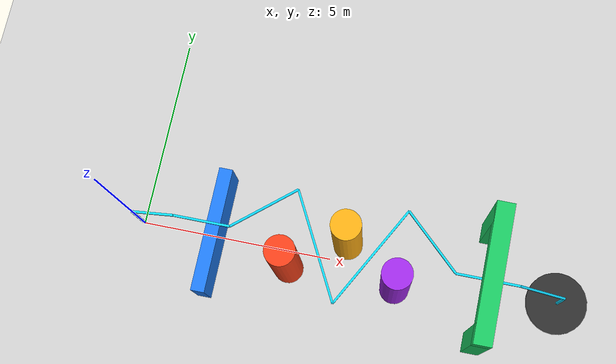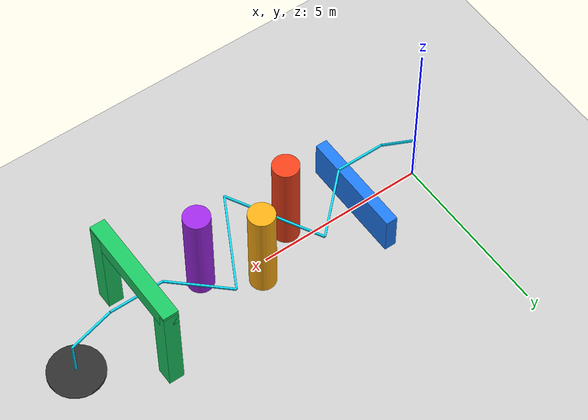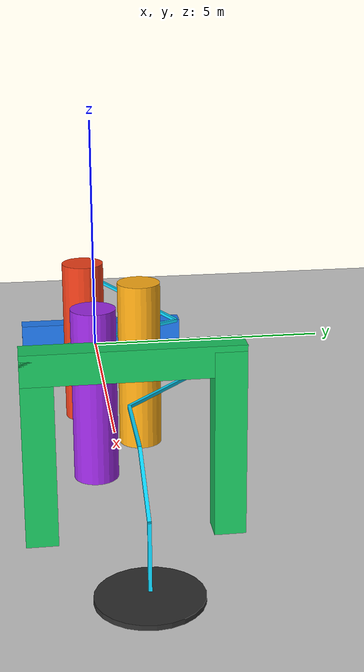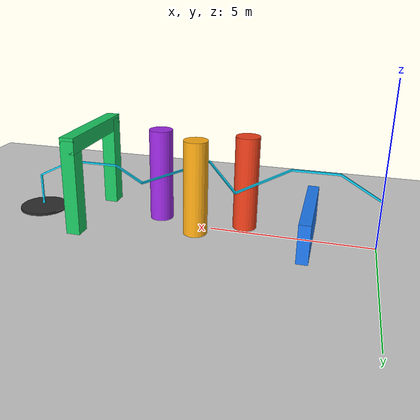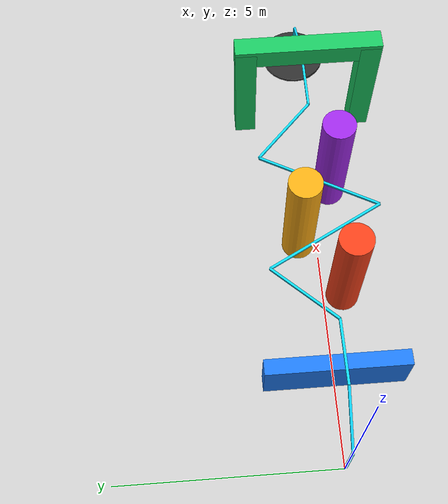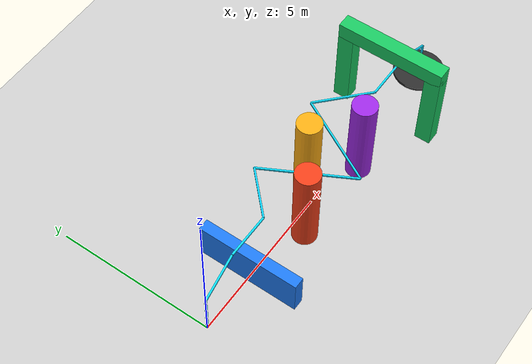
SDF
<?xml version="1.0"?>
<sdf version="1.6">
  <world name="obstacle_course">
    <include><uri>model://sun</uri></include>
    <include><uri>model://ground_plane</uri></include>
    <physics name="physics" type="ode">
      <max_step_size>0.002</max_step_size>
      <real_time_update_rate>500</real_time_update_rate>
    </physics>

    <!-- Niska ściana: trajektoria prowadzi nad nią. -->
    <model name="low_wall">
      <static>true</static><pose>2.0 0 0.6 0 0 0</pose>
      <link name="link">
        <collision name="collision"><geometry><box><size>0.35 3.2 1.2</size></box></geometry></collision>
        <visual name="visual"><geometry><box><size>0.35 3.2 1.2</size></box></geometry>
          <material><ambient>0.10 0.38 0.75 1</ambient><diffuse>0.12 0.48 0.95 1</diffuse></material>
        </visual>
      </link>
    </model>

    <!-- Trzy kolumny tworzące slalom. -->
    <model name="slalom_column_1">
      <static>true</static><pose>4.0 -0.45 1.5 0 0 0</pose>
      <link name="link">
        <collision name="collision"><geometry><cylinder><radius>0.38</radius><length>3.0</length></cylinder></geometry></collision>
        <visual name="visual"><geometry><cylinder><radius>0.38</radius><length>3.0</length></cylinder></geometry>
          <material><ambient>0.80 0.18 0.08 1</ambient><diffuse>0.95 0.25 0.10 1</diffuse></material>
        </visual>
      </link>
    </model>
    <model name="slalom_column_2">
      <static>true</static><pose>5.4 0.45 1.5 0 0 0</pose>
      <link name="link">
        <collision name="collision"><geometry><cylinder><radius>0.38</radius><length>3.0</length></cylinder></geometry></collision>
        <visual name="visual"><geometry><cylinder><radius>0.38</radius><length>3.0</length></cylinder></geometry>
          <material><ambient>0.85 0.55 0.05 1</ambient><diffuse>1.00 0.68 0.08 1</diffuse></material>
        </visual>
      </link>
    </model>
    <model name="slalom_column_3">
      <static>true</static><pose>6.8 -0.45 1.5 0 0 0</pose>
      <link name="link">
        <collision name="collision"><geometry><cylinder><radius>0.38</radius><length>3.0</length></cylinder></geometry></collision>
        <visual name="visual"><geometry><cylinder><radius>0.38</radius><length>3.0</length></cylinder></geometry>
          <material><ambient>0.50 0.10 0.72 1</ambient><diffuse>0.62 0.16 0.90 1</diffuse></material>
        </visual>
      </link>
    </model>

    <!-- Brama o prześwicie 2.4 m szerokości i 2.6 m wysokości. -->
    <model name="gate_left">
      <static>true</static><pose>9.0 1.45 1.5 0 0 0</pose>
      <link name="link">
        <collision name="collision"><geometry><box><size>0.45 0.50 3.0</size></box></geometry></collision>
        <visual name="visual"><geometry><box><size>0.45 0.50 3.0</size></box></geometry>
          <material><ambient>0.08 0.62 0.30 1</ambient><diffuse>0.10 0.78 0.38 1</diffuse></material>
        </visual>
      </link>
    </model>
    <model name="gate_right">
      <static>true</static><pose>9.0 -1.45 1.5 0 0 0</pose>
      <link name="link">
        <collision name="collision"><geometry><box><size>0.45 0.50 3.0</size></box></geometry></collision>
        <visual name="visual"><geometry><box><size>0.45 0.50 3.0</size></box></geometry>
          <material><ambient>0.08 0.62 0.30 1</ambient><diffuse>0.10 0.78 0.38 1</diffuse></material>
        </visual>
      </link>
    </model>
    <model name="gate_top">
      <static>true</static><pose>9.0 0 2.85 0 0 0</pose>
      <link name="link">
        <collision name="collision"><geometry><box><size>0.45 3.4 0.50</size></box></geometry></collision>
        <visual name="visual"><geometry><box><size>0.45 3.4 0.50</size></box></geometry>
          <material><ambient>0.08 0.62 0.30 1</ambient><diffuse>0.10 0.78 0.38 1</diffuse></material>
        </visual>
      </link>
    </model>

    <model name="landing_pad">
      <static>true</static><pose>11.0 0 0.04 0 0 0</pose>
      <link name="link">
        <collision name="collision"><geometry><cylinder><radius>0.8</radius><length>0.08</length></cylinder></geometry></collision>
        <visual name="visual"><geometry><cylinder><radius>0.8</radius><length>0.08</length></cylinder></geometry>
          <material><ambient>0.12 0.12 0.12 1</ambient><diffuse>0.18 0.18 0.18 1</diffuse></material>
        </visual>
      </link>
    </model>

    <!-- Wizualizacja trajektorii referencyjnej z mission_obstacle_course.yaml.
         Elementy nie mają geometrii collision, więc nie oddziałują z dronem. -->
    <model name="reference_path">
      <static>true</static>
      <link name="segment_01">
        <pose>0 0 0.825 0 -1.57080 0</pose>
        <visual name="visual"><geometry><box><size>1.35 0.055 0.055</size></box></geometry>
          <material><ambient>0.05 0.85 1 1</ambient><diffuse>0.05 0.85 1 1</diffuse><emissive>0.02 0.45 0.60 1</emissive></material>
        </visual>
      </link>
      <link name="segment_02">
        <pose>0.6 0 1.85 0 -0.52807 0</pose>
        <visual name="visual"><geometry><box><size>1.38924 0.055 0.055</size></box></geometry>
          <material><ambient>0.05 0.85 1 1</ambient><diffuse>0.05 0.85 1 1</diffuse><emissive>0.02 0.45 0.60 1</emissive></material>
        </visual>
      </link>
      <link name="segment_03">
        <pose>1.9 0 2.2 0 0 0</pose>
        <visual name="visual"><geometry><box><size>1.4 0.055 0.055</size></box></geometry>
          <material><ambient>0.05 0.85 1 1</ambient><diffuse>0.05 0.85 1 1</diffuse><emissive>0.02 0.45 0.60 1</emissive></material>
        </visual>
      </link>
      <link name="segment_04">
        <pose>3.3 0.65 2.0 0 0.20639 0.74838</pose>
        <visual name="visual"><geometry><box><size>1.95192 0.055 0.055</size></box></geometry>
          <material><ambient>0.05 0.85 1 1</ambient><diffuse>0.05 0.85 1 1</diffuse><emissive>0.02 0.45 0.60 1</emissive></material>
        </visual>
      </link>
      <link name="segment_05">
        <pose>4.7 0 1.8 0 0 -1.07685</pose>
        <visual name="visual"><geometry><box><size>2.95296 0.055 0.055</size></box></geometry>
          <material><ambient>0.05 0.85 1 1</ambient><diffuse>0.05 0.85 1 1</diffuse><emissive>0.02 0.45 0.60 1</emissive></material>
        </visual>
      </link>
      <link name="segment_06">
        <pose>6.1 0 1.8 0 0 1.07685</pose>
        <visual name="visual"><geometry><box><size>2.95296 0.055 0.055</size></box></geometry>
          <material><ambient>0.05 0.85 1 1</ambient><diffuse>0.05 0.85 1 1</diffuse><emissive>0.02 0.45 0.60 1</emissive></material>
        </visual>
      </link>
      <link name="segment_07">
        <pose>7.5 0.65 1.8 0 0 -0.74838</pose>
        <visual name="visual"><geometry><box><size>1.91050 0.055 0.055</size></box></geometry>
          <material><ambient>0.05 0.85 1 1</ambient><diffuse>0.05 0.85 1 1</diffuse><emissive>0.02 0.45 0.60 1</emissive></material>
        </visual>
      </link>
      <link name="segment_08">
        <pose>9.0 0 1.8 0 0 0</pose>
        <visual name="visual"><geometry><box><size>1.6 0.055 0.055</size></box></geometry>
          <material><ambient>0.05 0.85 1 1</ambient><diffuse>0.05 0.85 1 1</diffuse><emissive>0.02 0.45 0.60 1</emissive></material>
        </visual>
      </link>
      <link name="segment_09">
        <pose>10.4 0 1.5 0 0.46365 0</pose>
        <visual name="visual"><geometry><box><size>1.34164 0.055 0.055</size></box></geometry>
          <material><ambient>0.05 0.85 1 1</ambient><diffuse>0.05 0.85 1 1</diffuse><emissive>0.02 0.45 0.60 1</emissive></material>
        </visual>
      </link>
      <link name="segment_10">
        <pose>11.0 0 0.675 0 1.57080 0</pose>
        <visual name="visual"><geometry><box><size>1.05 0.055 0.055</size></box></geometry>
          <material><ambient>0.05 0.85 1 1</ambient><diffuse>0.05 0.85 1 1</diffuse><emissive>0.02 0.45 0.60 1</emissive></material>
        </visual>
      </link>
    </model>
  </world>
</sdf>
